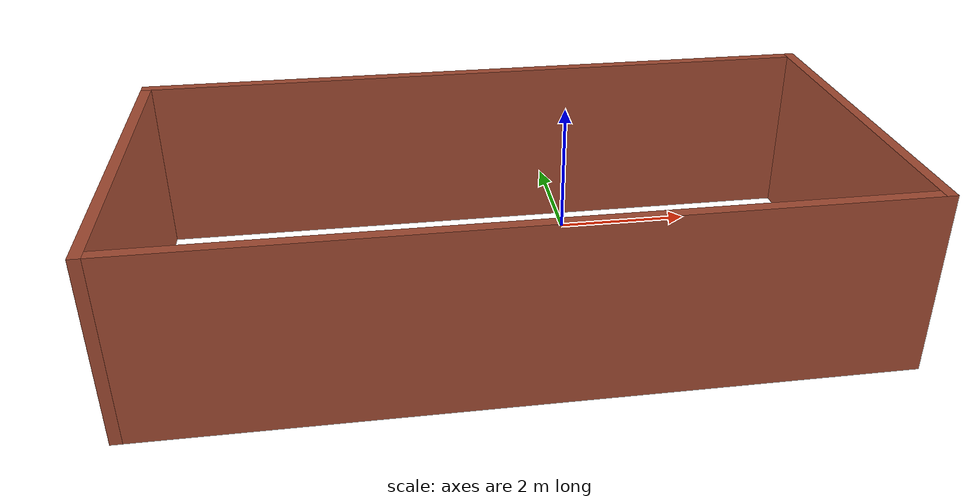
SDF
<?xml version='1.0'?>
<sdf version='1.6'>
  <model name='Walls'>
    <pose frame=''>-1.215 -1.915 0 0 -0 0</pose>
    <link name='Wall_10'>
      <collision name='Wall_10_Collision'>
        <geometry>
          <box>
            <size>10 0.15 2.5</size>
          </box>
        </geometry>
        <pose frame=''>0 0 1.25 0 -0 0</pose>
      </collision>
      <visual name='Wall_10_Visual'>
        <pose frame=''>0 0 1.25 0 -0 0</pose>
        <geometry>
          <box>
            <size>10 0.15 2.5</size>
          </box>
        </geometry>
        <material>
          <script>
            <uri>file://media/materials/scripts/gazebo.material</uri>
            <name>Gazebo/Bricks</name>
          </script>
          <ambient>1 1 1 1</ambient>
        </material>
        <meta>
          <layer>0</layer>
        </meta>
      </visual>
      <pose frame=''>-0 -2.425 0 0 -0 3.14159</pose>
    </link>
    <link name='Wall_3'>
      <collision name='Wall_3_Collision'>
        <geometry>
          <box>
            <size>5 0.15 2.5</size>
          </box>
        </geometry>
        <pose frame=''>0 0 1.25 0 -0 0</pose>
      </collision>
      <visual name='Wall_3_Visual'>
        <pose frame=''>0 0 1.25 0 -0 0</pose>
        <geometry>
          <box>
            <size>5 0.15 2.5</size>
          </box>
        </geometry>
        <material>
          <script>
            <uri>file://media/materials/scripts/gazebo.material</uri>
            <name>Gazebo/Bricks</name>
          </script>
          <ambient>1 1 1 1</ambient>
        </material>
        <meta>
          <layer>0</layer>
        </meta>
      </visual>
      <pose frame=''>-4.925 -0 0 0 -0 -1.5708</pose>
    </link>
    <link name='Wall_8'>
      <collision name='Wall_8_Collision'>
        <geometry>
          <box>
            <size>10 0.15 2.5</size>
          </box>
        </geometry>
        <pose frame=''>0 0 1.25 0 -0 0</pose>
      </collision>
      <visual name='Wall_8_Visual'>
        <pose frame=''>0 0 1.25 0 -0 0</pose>
        <geometry>
          <box>
            <size>10 0.15 2.5</size>
          </box>
        </geometry>
        <material>
          <script>
            <uri>file://media/materials/scripts/gazebo.material</uri>
            <name>Gazebo/Bricks</name>
          </script>
          <ambient>1 1 1 1</ambient>
        </material>
        <meta>
          <layer>0</layer>
        </meta>
      </visual>
      <pose frame=''>-0 2.425 0 0 -0 0</pose>
    </link>
    <link name='Wall_9'>
      <collision name='Wall_9_Collision'>
        <geometry>
          <box>
            <size>5 0.15 2.5</size>
          </box>
        </geometry>
        <pose frame=''>0 0 1.25 0 -0 0</pose>
      </collision>
      <visual name='Wall_9_Visual'>
        <pose frame=''>0 0 1.25 0 -0 0</pose>
        <geometry>
          <box>
            <size>5 0.15 2.5</size>
          </box>
        </geometry>
        <material>
          <script>
            <uri>file://media/materials/scripts/gazebo.material</uri>
            <name>Gazebo/Bricks</name>
          </script>
          <ambient>1 1 1 1</ambient>
        </material>
        <meta>
          <layer>0</layer>
        </meta>
      </visual>
      <pose frame=''>4.925 -0 0 0 -0 -1.5708</pose>
    </link>
    <static>1</static>
  </model>
</sdf>
